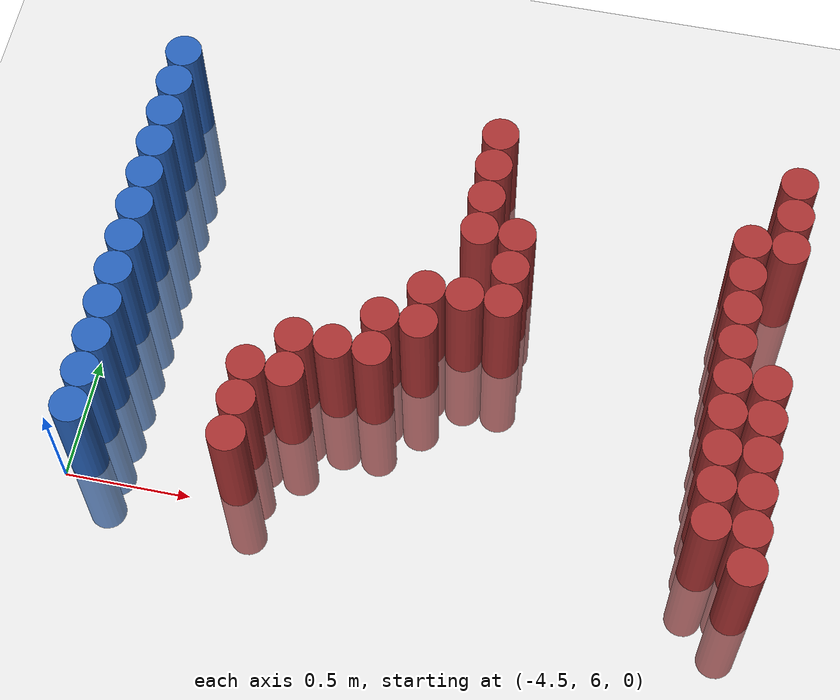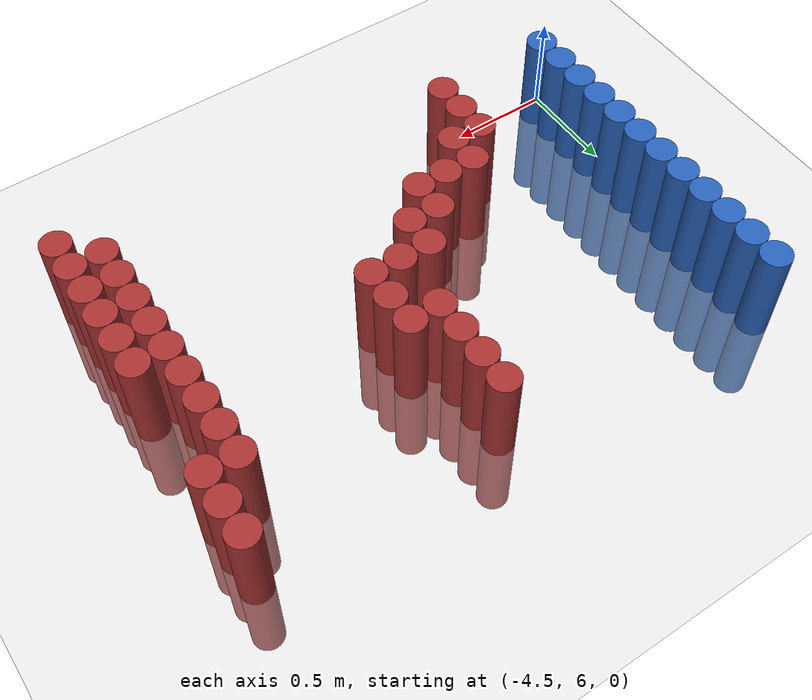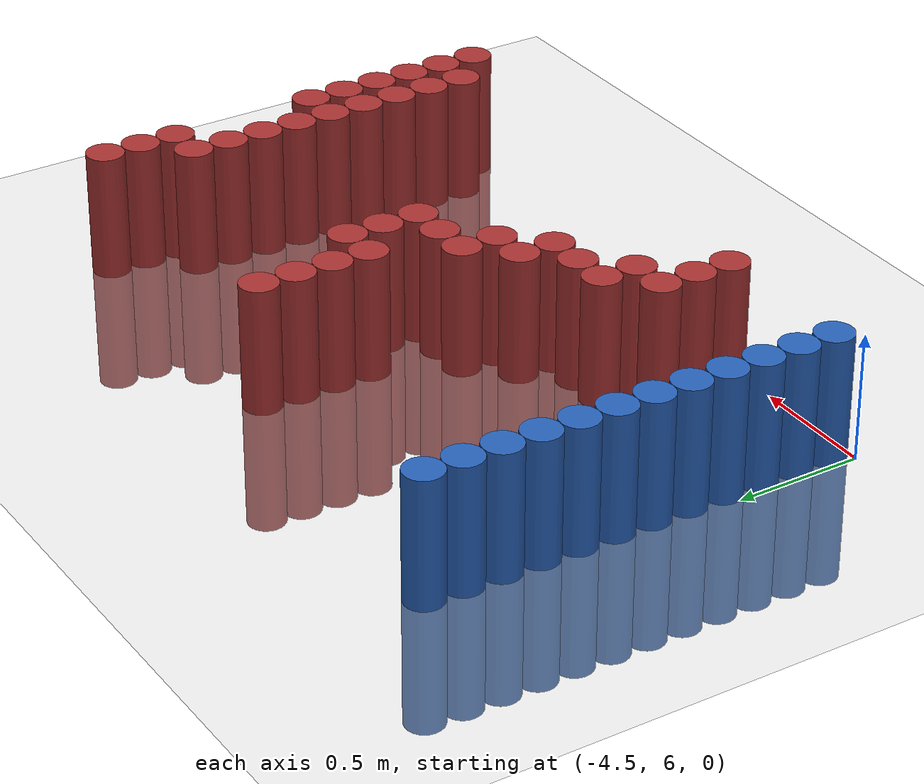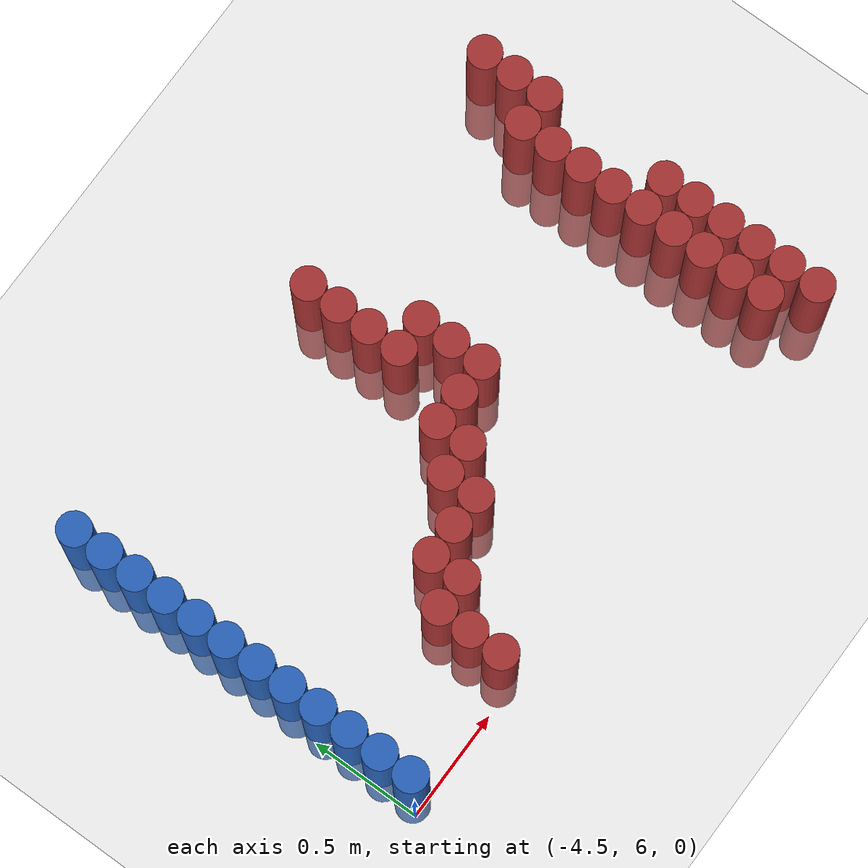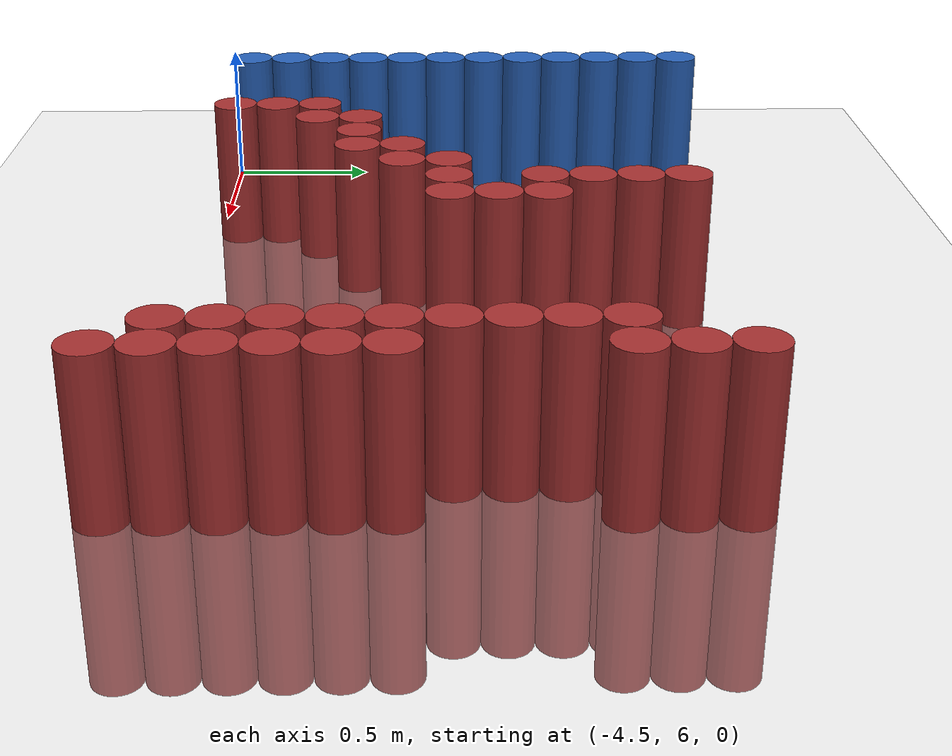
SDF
<sdf version="1.6">
 <world name="default">
  <model name="ground_plane">
   <static>1</static>
   <link name="link">
    <collision name="collision">
     <geometry><plane><normal>0 0 1</normal><size>100 100</size></plane></geometry>
     <surface><friction><ode><mu>100</mu><mu2>50</mu2></ode></friction></surface>
    </collision>
    <visual name="visual">
     <cast_shadows>0</cast_shadows>
     <geometry><plane><normal>0 0 1</normal><size>100 100</size></plane></geometry>
     <material>
      <script><uri>file://media/materials/scripts/gazebo.material</uri><name>Gazebo/Grey</name></script>
     </material>
    </visual>
   </link>
  </model>
  <model name="unit_cylinder_102">
   <static>1</static>
   <pose>-4.425000 6.075000 0.000000 0.000000 0.000000 0.000000</pose>
   <link name="link">
    <inertial>
     <mass>1</mass>
     <inertia><ixx>0.145833</ixx><ixy>0</ixy><ixz>0</ixz><iyy>0.145833</iyy><iyz>0</iyz><izz>0.125</izz></inertia>
    </inertial>
    <collision name="collision">
     <geometry><cylinder><radius>0.075000</radius><length>1</length></cylinder></geometry>
    </collision>
    <visual name="visual">
     <geometry><cylinder><radius>0.075000</radius><length>1</length></cylinder></geometry>
     <material>
      <ambient>0.152000 0.379000 0.720000 1</ambient>
      <diffuse>0.152000 0.379000 0.720000 1</diffuse>
     </material>
     <material>
      <script><name>Gazebo/Grey</name><uri>file://media/materials/scripts/gazebo.material</uri></script>
     </material>
    </visual>
   </link>
  </model>
  <model name="unit_cylinder_103">
   <static>1</static>
   <pose>-4.425000 6.225000 0.000000 0.000000 0.000000 0.000000</pose>
   <link name="link">
    <inertial>
     <mass>1</mass>
     <inertia><ixx>0.145833</ixx><ixy>0</ixy><ixz>0</ixz><iyy>0.145833</iyy><iyz>0</iyz><izz>0.125</izz></inertia>
    </inertial>
    <collision name="collision">
     <geometry><cylinder><radius>0.075000</radius><length>1</length></cylinder></geometry>
    </collision>
    <visual name="visual">
     <geometry><cylinder><radius>0.075000</radius><length>1</length></cylinder></geometry>
     <material>
      <ambient>0.152000 0.379000 0.720000 1</ambient>
      <diffuse>0.152000 0.379000 0.720000 1</diffuse>
     </material>
     <material>
      <script><name>Gazebo/Grey</name><uri>file://media/materials/scripts/gazebo.material</uri></script>
     </material>
    </visual>
   </link>
  </model>
  <model name="unit_cylinder_104">
   <static>1</static>
   <pose>-4.425000 6.375000 0.000000 0.000000 0.000000 0.000000</pose>
   <link name="link">
    <inertial>
     <mass>1</mass>
     <inertia><ixx>0.145833</ixx><ixy>0</ixy><ixz>0</ixz><iyy>0.145833</iyy><iyz>0</iyz><izz>0.125</izz></inertia>
    </inertial>
    <collision name="collision">
     <geometry><cylinder><radius>0.075000</radius><length>1</length></cylinder></geometry>
    </collision>
    <visual name="visual">
     <geometry><cylinder><radius>0.075000</radius><length>1</length></cylinder></geometry>
     <material>
      <ambient>0.152000 0.379000 0.720000 1</ambient>
      <diffuse>0.152000 0.379000 0.720000 1</diffuse>
     </material>
     <material>
      <script><name>Gazebo/Grey</name><uri>file://media/materials/scripts/gazebo.material</uri></script>
     </material>
    </visual>
   </link>
  </model>
  <model name="unit_cylinder_105">
   <static>1</static>
   <pose>-4.425000 6.525000 0.000000 0.000000 0.000000 0.000000</pose>
   <link name="link">
    <inertial>
     <mass>1</mass>
     <inertia><ixx>0.145833</ixx><ixy>0</ixy><ixz>0</ixz><iyy>0.145833</iyy><iyz>0</iyz><izz>0.125</izz></inertia>
    </inertial>
    <collision name="collision">
     <geometry><cylinder><radius>0.075000</radius><length>1</length></cylinder></geometry>
    </collision>
    <visual name="visual">
     <geometry><cylinder><radius>0.075000</radius><length>1</length></cylinder></geometry>
     <material>
      <ambient>0.152000 0.379000 0.720000 1</ambient>
      <diffuse>0.152000 0.379000 0.720000 1</diffuse>
     </material>
     <material>
      <script><name>Gazebo/Grey</name><uri>file://media/materials/scripts/gazebo.material</uri></script>
     </material>
    </visual>
   </link>
  </model>
  <model name="unit_cylinder_106">
   <static>1</static>
   <pose>-4.425000 6.675000 0.000000 0.000000 0.000000 0.000000</pose>
   <link name="link">
    <inertial>
     <mass>1</mass>
     <inertia><ixx>0.145833</ixx><ixy>0</ixy><ixz>0</ixz><iyy>0.145833</iyy><iyz>0</iyz><izz>0.125</izz></inertia>
    </inertial>
    <collision name="collision">
     <geometry><cylinder><radius>0.075000</radius><length>1</length></cylinder></geometry>
    </collision>
    <visual name="visual">
     <geometry><cylinder><radius>0.075000</radius><length>1</length></cylinder></geometry>
     <material>
      <ambient>0.152000 0.379000 0.720000 1</ambient>
      <diffuse>0.152000 0.379000 0.720000 1</diffuse>
     </material>
     <material>
      <script><name>Gazebo/Grey</name><uri>file://media/materials/scripts/gazebo.material</uri></script>
     </material>
    </visual>
   </link>
  </model>
  <model name="unit_cylinder_107">
   <static>1</static>
   <pose>-4.425000 6.825000 0.000000 0.000000 0.000000 0.000000</pose>
   <link name="link">
    <inertial>
     <mass>1</mass>
     <inertia><ixx>0.145833</ixx><ixy>0</ixy><ixz>0</ixz><iyy>0.145833</iyy><iyz>0</iyz><izz>0.125</izz></inertia>
    </inertial>
    <collision name="collision">
     <geometry><cylinder><radius>0.075000</radius><length>1</length></cylinder></geometry>
    </collision>
    <visual name="visual">
     <geometry><cylinder><radius>0.075000</radius><length>1</length></cylinder></geometry>
     <material>
      <ambient>0.152000 0.379000 0.720000 1</ambient>
      <diffuse>0.152000 0.379000 0.720000 1</diffuse>
     </material>
     <material>
      <script><name>Gazebo/Grey</name><uri>file://media/materials/scripts/gazebo.material</uri></script>
     </material>
    </visual>
   </link>
  </model>
  <model name="unit_cylinder_108">
   <static>1</static>
   <pose>-4.425000 6.975000 0.000000 0.000000 0.000000 0.000000</pose>
   <link name="link">
    <inertial>
     <mass>1</mass>
     <inertia><ixx>0.145833</ixx><ixy>0</ixy><ixz>0</ixz><iyy>0.145833</iyy><iyz>0</iyz><izz>0.125</izz></inertia>
    </inertial>
    <collision name="collision">
     <geometry><cylinder><radius>0.075000</radius><length>1</length></cylinder></geometry>
    </collision>
    <visual name="visual">
     <geometry><cylinder><radius>0.075000</radius><length>1</length></cylinder></geometry>
     <material>
      <ambient>0.152000 0.379000 0.720000 1</ambient>
      <diffuse>0.152000 0.379000 0.720000 1</diffuse>
     </material>
     <material>
      <script><name>Gazebo/Grey</name><uri>file://media/materials/scripts/gazebo.material</uri></script>
     </material>
    </visual>
   </link>
  </model>
  <model name="unit_cylinder_109">
   <static>1</static>
   <pose>-4.425000 7.125000 0.000000 0.000000 0.000000 0.000000</pose>
   <link name="link">
    <inertial>
     <mass>1</mass>
     <inertia><ixx>0.145833</ixx><ixy>0</ixy><ixz>0</ixz><iyy>0.145833</iyy><iyz>0</iyz><izz>0.125</izz></inertia>
    </inertial>
    <collision name="collision">
     <geometry><cylinder><radius>0.075000</radius><length>1</length></cylinder></geometry>
    </collision>
    <visual name="visual">
     <geometry><cylinder><radius>0.075000</radius><length>1</length></cylinder></geometry>
     <material>
      <ambient>0.152000 0.379000 0.720000 1</ambient>
      <diffuse>0.152000 0.379000 0.720000 1</diffuse>
     </material>
     <material>
      <script><name>Gazebo/Grey</name><uri>file://media/materials/scripts/gazebo.material</uri></script>
     </material>
    </visual>
   </link>
  </model>
  <model name="unit_cylinder_110">
   <static>1</static>
   <pose>-4.425000 7.275000 0.000000 0.000000 0.000000 0.000000</pose>
   <link name="link">
    <inertial>
     <mass>1</mass>
     <inertia><ixx>0.145833</ixx><ixy>0</ixy><ixz>0</ixz><iyy>0.145833</iyy><iyz>0</iyz><izz>0.125</izz></inertia>
    </inertial>
    <collision name="collision">
     <geometry><cylinder><radius>0.075000</radius><length>1</length></cylinder></geometry>
    </collision>
    <visual name="visual">
     <geometry><cylinder><radius>0.075000</radius><length>1</length></cylinder></geometry>
     <material>
      <ambient>0.152000 0.379000 0.720000 1</ambient>
      <diffuse>0.152000 0.379000 0.720000 1</diffuse>
     </material>
     <material>
      <script><name>Gazebo/Grey</name><uri>file://media/materials/scripts/gazebo.material</uri></script>
     </material>
    </visual>
   </link>
  </model>
  <model name="unit_cylinder_111">
   <static>1</static>
   <pose>-4.425000 7.425000 0.000000 0.000000 0.000000 0.000000</pose>
   <link name="link">
    <inertial>
     <mass>1</mass>
     <inertia><ixx>0.145833</ixx><ixy>0</ixy><ixz>0</ixz><iyy>0.145833</iyy><iyz>0</iyz><izz>0.125</izz></inertia>
    </inertial>
    <collision name="collision">
     <geometry><cylinder><radius>0.075000</radius><length>1</length></cylinder></geometry>
    </collision>
    <visual name="visual">
     <geometry><cylinder><radius>0.075000</radius><length>1</length></cylinder></geometry>
     <material>
      <ambient>0.152000 0.379000 0.720000 1</ambient>
      <diffuse>0.152000 0.379000 0.720000 1</diffuse>
     </material>
     <material>
      <script><name>Gazebo/Grey</name><uri>file://media/materials/scripts/gazebo.material</uri></script>
     </material>
    </visual>
   </link>
  </model>
  <model name="unit_cylinder_112">
   <static>1</static>
   <pose>-4.425000 7.575000 0.000000 0.000000 0.000000 0.000000</pose>
   <link name="link">
    <inertial>
     <mass>1</mass>
     <inertia><ixx>0.145833</ixx><ixy>0</ixy><ixz>0</ixz><iyy>0.145833</iyy><iyz>0</iyz><izz>0.125</izz></inertia>
    </inertial>
    <collision name="collision">
     <geometry><cylinder><radius>0.075000</radius><length>1</length></cylinder></geometry>
    </collision>
    <visual name="visual">
     <geometry><cylinder><radius>0.075000</radius><length>1</length></cylinder></geometry>
     <material>
      <ambient>0.152000 0.379000 0.720000 1</ambient>
      <diffuse>0.152000 0.379000 0.720000 1</diffuse>
     </material>
     <material>
      <script><name>Gazebo/Grey</name><uri>file://media/materials/scripts/gazebo.material</uri></script>
     </material>
    </visual>
   </link>
  </model>
  <model name="unit_cylinder_113">
   <static>1</static>
   <pose>-4.425000 7.725000 0.000000 0.000000 0.000000 0.000000</pose>
   <link name="link">
    <inertial>
     <mass>1</mass>
     <inertia><ixx>0.145833</ixx><ixy>0</ixy><ixz>0</ixz><iyy>0.145833</iyy><iyz>0</iyz><izz>0.125</izz></inertia>
    </inertial>
    <collision name="collision">
     <geometry><cylinder><radius>0.075000</radius><length>1</length></cylinder></geometry>
    </collision>
    <visual name="visual">
     <geometry><cylinder><radius>0.075000</radius><length>1</length></cylinder></geometry>
     <material>
      <ambient>0.152000 0.379000 0.720000 1</ambient>
      <diffuse>0.152000 0.379000 0.720000 1</diffuse>
     </material>
     <material>
      <script><name>Gazebo/Grey</name><uri>file://media/materials/scripts/gazebo.material</uri></script>
     </material>
    </visual>
   </link>
  </model>
  <model name="unit_cylinder_146">
   <static>1</static>
   <pose>-3.825000 6.075000 0.000000 0.000000 0.000000 0.000000</pose>
   <link name="link">
    <inertial>
     <mass>1</mass>
     <inertia><ixx>0.145833</ixx><ixy>0</ixy><ixz>0</ixz><iyy>0.145833</iyy><iyz>0</iyz><izz>0.125</izz></inertia>
    </inertial>
    <collision name="collision">
     <geometry><cylinder><radius>0.075000</radius><length>1</length></cylinder></geometry>
    </collision>
    <visual name="visual">
     <geometry><cylinder><radius>0.075000</radius><length>1</length></cylinder></geometry>
     <material>
      <ambient>0.648000 0.192000 0.192000 1</ambient>
      <diffuse>0.648000 0.192000 0.192000 1</diffuse>
     </material>
     <material>
      <script><name>Gazebo/Grey</name><uri>file://media/materials/scripts/gazebo.material</uri></script>
     </material>
    </visual>
   </link>
  </model>
  <model name="unit_cylinder_147">
   <static>1</static>
   <pose>-3.825000 6.225000 0.000000 0.000000 0.000000 0.000000</pose>
   <link name="link">
    <inertial>
     <mass>1</mass>
     <inertia><ixx>0.145833</ixx><ixy>0</ixy><ixz>0</ixz><iyy>0.145833</iyy><iyz>0</iyz><izz>0.125</izz></inertia>
    </inertial>
    <collision name="collision">
     <geometry><cylinder><radius>0.075000</radius><length>1</length></cylinder></geometry>
    </collision>
    <visual name="visual">
     <geometry><cylinder><radius>0.075000</radius><length>1</length></cylinder></geometry>
     <material>
      <ambient>0.648000 0.192000 0.192000 1</ambient>
      <diffuse>0.648000 0.192000 0.192000 1</diffuse>
     </material>
     <material>
      <script><name>Gazebo/Grey</name><uri>file://media/materials/scripts/gazebo.material</uri></script>
     </material>
    </visual>
   </link>
  </model>
  <model name="unit_cylinder_148">
   <static>1</static>
   <pose>-3.825000 6.375000 0.000000 0.000000 0.000000 0.000000</pose>
   <link name="link">
    <inertial>
     <mass>1</mass>
     <inertia><ixx>0.145833</ixx><ixy>0</ixy><ixz>0</ixz><iyy>0.145833</iyy><iyz>0</iyz><izz>0.125</izz></inertia>
    </inertial>
    <collision name="collision">
     <geometry><cylinder><radius>0.075000</radius><length>1</length></cylinder></geometry>
    </collision>
    <visual name="visual">
     <geometry><cylinder><radius>0.075000</radius><length>1</length></cylinder></geometry>
     <material>
      <ambient>0.648000 0.192000 0.192000 1</ambient>
      <diffuse>0.648000 0.192000 0.192000 1</diffuse>
     </material>
     <material>
      <script><name>Gazebo/Grey</name><uri>file://media/materials/scripts/gazebo.material</uri></script>
     </material>
    </visual>
   </link>
  </model>
  <model name="unit_cylinder_155">
   <static>1</static>
   <pose>-3.675000 6.375000 0.000000 0.000000 0.000000 0.000000</pose>
   <link name="link">
    <inertial>
     <mass>1</mass>
     <inertia><ixx>0.145833</ixx><ixy>0</ixy><ixz>0</ixz><iyy>0.145833</iyy><iyz>0</iyz><izz>0.125</izz></inertia>
    </inertial>
    <collision name="collision">
     <geometry><cylinder><radius>0.075000</radius><length>1</length></cylinder></geometry>
    </collision>
    <visual name="visual">
     <geometry><cylinder><radius>0.075000</radius><length>1</length></cylinder></geometry>
     <material>
      <ambient>0.648000 0.192000 0.192000 1</ambient>
      <diffuse>0.648000 0.192000 0.192000 1</diffuse>
     </material>
     <material>
      <script><name>Gazebo/Grey</name><uri>file://media/materials/scripts/gazebo.material</uri></script>
     </material>
    </visual>
   </link>
  </model>
  <model name="unit_cylinder_156">
   <static>1</static>
   <pose>-3.675000 6.525000 0.000000 0.000000 0.000000 0.000000</pose>
   <link name="link">
    <inertial>
     <mass>1</mass>
     <inertia><ixx>0.145833</ixx><ixy>0</ixy><ixz>0</ixz><iyy>0.145833</iyy><iyz>0</iyz><izz>0.125</izz></inertia>
    </inertial>
    <collision name="collision">
     <geometry><cylinder><radius>0.075000</radius><length>1</length></cylinder></geometry>
    </collision>
    <visual name="visual">
     <geometry><cylinder><radius>0.075000</radius><length>1</length></cylinder></geometry>
     <material>
      <ambient>0.648000 0.192000 0.192000 1</ambient>
      <diffuse>0.648000 0.192000 0.192000 1</diffuse>
     </material>
     <material>
      <script><name>Gazebo/Grey</name><uri>file://media/materials/scripts/gazebo.material</uri></script>
     </material>
    </visual>
   </link>
  </model>
  <model name="unit_cylinder_161">
   <static>1</static>
   <pose>-3.525000 6.525000 0.000000 0.000000 0.000000 0.000000</pose>
   <link name="link">
    <inertial>
     <mass>1</mass>
     <inertia><ixx>0.145833</ixx><ixy>0</ixy><ixz>0</ixz><iyy>0.145833</iyy><iyz>0</iyz><izz>0.125</izz></inertia>
    </inertial>
    <collision name="collision">
     <geometry><cylinder><radius>0.075000</radius><length>1</length></cylinder></geometry>
    </collision>
    <visual name="visual">
     <geometry><cylinder><radius>0.075000</radius><length>1</length></cylinder></geometry>
     <material>
      <ambient>0.648000 0.192000 0.192000 1</ambient>
      <diffuse>0.648000 0.192000 0.192000 1</diffuse>
     </material>
     <material>
      <script><name>Gazebo/Grey</name><uri>file://media/materials/scripts/gazebo.material</uri></script>
     </material>
    </visual>
   </link>
  </model>
  <model name="unit_cylinder_163">
   <static>1</static>
   <pose>-3.375000 6.525000 0.000000 0.000000 0.000000 0.000000</pose>
   <link name="link">
    <inertial>
     <mass>1</mass>
     <inertia><ixx>0.145833</ixx><ixy>0</ixy><ixz>0</ixz><iyy>0.145833</iyy><iyz>0</iyz><izz>0.125</izz></inertia>
    </inertial>
    <collision name="collision">
     <geometry><cylinder><radius>0.075000</radius><length>1</length></cylinder></geometry>
    </collision>
    <visual name="visual">
     <geometry><cylinder><radius>0.075000</radius><length>1</length></cylinder></geometry>
     <material>
      <ambient>0.648000 0.192000 0.192000 1</ambient>
      <diffuse>0.648000 0.192000 0.192000 1</diffuse>
     </material>
     <material>
      <script><name>Gazebo/Grey</name><uri>file://media/materials/scripts/gazebo.material</uri></script>
     </material>
    </visual>
   </link>
  </model>
  <model name="unit_cylinder_164">
   <static>1</static>
   <pose>-3.375000 6.675000 0.000000 0.000000 0.000000 0.000000</pose>
   <link name="link">
    <inertial>
     <mass>1</mass>
     <inertia><ixx>0.145833</ixx><ixy>0</ixy><ixz>0</ixz><iyy>0.145833</iyy><iyz>0</iyz><izz>0.125</izz></inertia>
    </inertial>
    <collision name="collision">
     <geometry><cylinder><radius>0.075000</radius><length>1</length></cylinder></geometry>
    </collision>
    <visual name="visual">
     <geometry><cylinder><radius>0.075000</radius><length>1</length></cylinder></geometry>
     <material>
      <ambient>0.648000 0.192000 0.192000 1</ambient>
      <diffuse>0.648000 0.192000 0.192000 1</diffuse>
     </material>
     <material>
      <script><name>Gazebo/Grey</name><uri>file://media/materials/scripts/gazebo.material</uri></script>
     </material>
    </visual>
   </link>
  </model>
  <model name="unit_cylinder_166">
   <static>1</static>
   <pose>-3.225000 6.675000 0.000000 0.000000 0.000000 0.000000</pose>
   <link name="link">
    <inertial>
     <mass>1</mass>
     <inertia><ixx>0.145833</ixx><ixy>0</ixy><ixz>0</ixz><iyy>0.145833</iyy><iyz>0</iyz><izz>0.125</izz></inertia>
    </inertial>
    <collision name="collision">
     <geometry><cylinder><radius>0.075000</radius><length>1</length></cylinder></geometry>
    </collision>
    <visual name="visual">
     <geometry><cylinder><radius>0.075000</radius><length>1</length></cylinder></geometry>
     <material>
      <ambient>0.648000 0.192000 0.192000 1</ambient>
      <diffuse>0.648000 0.192000 0.192000 1</diffuse>
     </material>
     <material>
      <script><name>Gazebo/Grey</name><uri>file://media/materials/scripts/gazebo.material</uri></script>
     </material>
    </visual>
   </link>
  </model>
  <model name="unit_cylinder_167">
   <static>1</static>
   <pose>-3.225000 6.825000 0.000000 0.000000 0.000000 0.000000</pose>
   <link name="link">
    <inertial>
     <mass>1</mass>
     <inertia><ixx>0.145833</ixx><ixy>0</ixy><ixz>0</ixz><iyy>0.145833</iyy><iyz>0</iyz><izz>0.125</izz></inertia>
    </inertial>
    <collision name="collision">
     <geometry><cylinder><radius>0.075000</radius><length>1</length></cylinder></geometry>
    </collision>
    <visual name="visual">
     <geometry><cylinder><radius>0.075000</radius><length>1</length></cylinder></geometry>
     <material>
      <ambient>0.648000 0.192000 0.192000 1</ambient>
      <diffuse>0.648000 0.192000 0.192000 1</diffuse>
     </material>
     <material>
      <script><name>Gazebo/Grey</name><uri>file://media/materials/scripts/gazebo.material</uri></script>
     </material>
    </visual>
   </link>
  </model>
  <model name="unit_cylinder_169">
   <static>1</static>
   <pose>-3.075000 6.825000 0.000000 0.000000 0.000000 0.000000</pose>
   <link name="link">
    <inertial>
     <mass>1</mass>
     <inertia><ixx>0.145833</ixx><ixy>0</ixy><ixz>0</ixz><iyy>0.145833</iyy><iyz>0</iyz><izz>0.125</izz></inertia>
    </inertial>
    <collision name="collision">
     <geometry><cylinder><radius>0.075000</radius><length>1</length></cylinder></geometry>
    </collision>
    <visual name="visual">
     <geometry><cylinder><radius>0.075000</radius><length>1</length></cylinder></geometry>
     <material>
      <ambient>0.648000 0.192000 0.192000 1</ambient>
      <diffuse>0.648000 0.192000 0.192000 1</diffuse>
     </material>
     <material>
      <script><name>Gazebo/Grey</name><uri>file://media/materials/scripts/gazebo.material</uri></script>
     </material>
    </visual>
   </link>
  </model>
  <model name="unit_cylinder_170">
   <static>1</static>
   <pose>-3.075000 7.125000 0.000000 0.000000 0.000000 0.000000</pose>
   <link name="link">
    <inertial>
     <mass>1</mass>
     <inertia><ixx>0.145833</ixx><ixy>0</ixy><ixz>0</ixz><iyy>0.145833</iyy><iyz>0</iyz><izz>0.125</izz></inertia>
    </inertial>
    <collision name="collision">
     <geometry><cylinder><radius>0.075000</radius><length>1</length></cylinder></geometry>
    </collision>
    <visual name="visual">
     <geometry><cylinder><radius>0.075000</radius><length>1</length></cylinder></geometry>
     <material>
      <ambient>0.648000 0.192000 0.192000 1</ambient>
      <diffuse>0.648000 0.192000 0.192000 1</diffuse>
     </material>
     <material>
      <script><name>Gazebo/Grey</name><uri>file://media/materials/scripts/gazebo.material</uri></script>
     </material>
    </visual>
   </link>
  </model>
  <model name="unit_cylinder_171">
   <static>1</static>
   <pose>-3.075000 7.275000 0.000000 0.000000 0.000000 0.000000</pose>
   <link name="link">
    <inertial>
     <mass>1</mass>
     <inertia><ixx>0.145833</ixx><ixy>0</ixy><ixz>0</ixz><iyy>0.145833</iyy><iyz>0</iyz><izz>0.125</izz></inertia>
    </inertial>
    <collision name="collision">
     <geometry><cylinder><radius>0.075000</radius><length>1</length></cylinder></geometry>
    </collision>
    <visual name="visual">
     <geometry><cylinder><radius>0.075000</radius><length>1</length></cylinder></geometry>
     <material>
      <ambient>0.648000 0.192000 0.192000 1</ambient>
      <diffuse>0.648000 0.192000 0.192000 1</diffuse>
     </material>
     <material>
      <script><name>Gazebo/Grey</name><uri>file://media/materials/scripts/gazebo.material</uri></script>
     </material>
    </visual>
   </link>
  </model>
  <model name="unit_cylinder_172">
   <static>1</static>
   <pose>-3.075000 7.425000 0.000000 0.000000 0.000000 0.000000</pose>
   <link name="link">
    <inertial>
     <mass>1</mass>
     <inertia><ixx>0.145833</ixx><ixy>0</ixy><ixz>0</ixz><iyy>0.145833</iyy><iyz>0</iyz><izz>0.125</izz></inertia>
    </inertial>
    <collision name="collision">
     <geometry><cylinder><radius>0.075000</radius><length>1</length></cylinder></geometry>
    </collision>
    <visual name="visual">
     <geometry><cylinder><radius>0.075000</radius><length>1</length></cylinder></geometry>
     <material>
      <ambient>0.648000 0.192000 0.192000 1</ambient>
      <diffuse>0.648000 0.192000 0.192000 1</diffuse>
     </material>
     <material>
      <script><name>Gazebo/Grey</name><uri>file://media/materials/scripts/gazebo.material</uri></script>
     </material>
    </visual>
   </link>
  </model>
  <model name="unit_cylinder_173">
   <static>1</static>
   <pose>-3.075000 7.575000 0.000000 0.000000 0.000000 0.000000</pose>
   <link name="link">
    <inertial>
     <mass>1</mass>
     <inertia><ixx>0.145833</ixx><ixy>0</ixy><ixz>0</ixz><iyy>0.145833</iyy><iyz>0</iyz><izz>0.125</izz></inertia>
    </inertial>
    <collision name="collision">
     <geometry><cylinder><radius>0.075000</radius><length>1</length></cylinder></geometry>
    </collision>
    <visual name="visual">
     <geometry><cylinder><radius>0.075000</radius><length>1</length></cylinder></geometry>
     <material>
      <ambient>0.648000 0.192000 0.192000 1</ambient>
      <diffuse>0.648000 0.192000 0.192000 1</diffuse>
     </material>
     <material>
      <script><name>Gazebo/Grey</name><uri>file://media/materials/scripts/gazebo.material</uri></script>
     </material>
    </visual>
   </link>
  </model>
  <model name="unit_cylinder_177">
   <static>1</static>
   <pose>-2.925000 6.825000 0.000000 0.000000 0.000000 0.000000</pose>
   <link name="link">
    <inertial>
     <mass>1</mass>
     <inertia><ixx>0.145833</ixx><ixy>0</ixy><ixz>0</ixz><iyy>0.145833</iyy><iyz>0</iyz><izz>0.125</izz></inertia>
    </inertial>
    <collision name="collision">
     <geometry><cylinder><radius>0.075000</radius><length>1</length></cylinder></geometry>
    </collision>
    <visual name="visual">
     <geometry><cylinder><radius>0.075000</radius><length>1</length></cylinder></geometry>
     <material>
      <ambient>0.648000 0.192000 0.192000 1</ambient>
      <diffuse>0.648000 0.192000 0.192000 1</diffuse>
     </material>
     <material>
      <script><name>Gazebo/Grey</name><uri>file://media/materials/scripts/gazebo.material</uri></script>
     </material>
    </visual>
   </link>
  </model>
  <model name="unit_cylinder_178">
   <static>1</static>
   <pose>-2.925000 6.975000 0.000000 0.000000 0.000000 0.000000</pose>
   <link name="link">
    <inertial>
     <mass>1</mass>
     <inertia><ixx>0.145833</ixx><ixy>0</ixy><ixz>0</ixz><iyy>0.145833</iyy><iyz>0</iyz><izz>0.125</izz></inertia>
    </inertial>
    <collision name="collision">
     <geometry><cylinder><radius>0.075000</radius><length>1</length></cylinder></geometry>
    </collision>
    <visual name="visual">
     <geometry><cylinder><radius>0.075000</radius><length>1</length></cylinder></geometry>
     <material>
      <ambient>0.648000 0.192000 0.192000 1</ambient>
      <diffuse>0.648000 0.192000 0.192000 1</diffuse>
     </material>
     <material>
      <script><name>Gazebo/Grey</name><uri>file://media/materials/scripts/gazebo.material</uri></script>
     </material>
    </visual>
   </link>
  </model>
  <model name="unit_cylinder_179">
   <static>1</static>
   <pose>-2.925000 7.125000 0.000000 0.000000 0.000000 0.000000</pose>
   <link name="link">
    <inertial>
     <mass>1</mass>
     <inertia><ixx>0.145833</ixx><ixy>0</ixy><ixz>0</ixz><iyy>0.145833</iyy><iyz>0</iyz><izz>0.125</izz></inertia>
    </inertial>
    <collision name="collision">
     <geometry><cylinder><radius>0.075000</radius><length>1</length></cylinder></geometry>
    </collision>
    <visual name="visual">
     <geometry><cylinder><radius>0.075000</radius><length>1</length></cylinder></geometry>
     <material>
      <ambient>0.648000 0.192000 0.192000 1</ambient>
      <diffuse>0.648000 0.192000 0.192000 1</diffuse>
     </material>
     <material>
      <script><name>Gazebo/Grey</name><uri>file://media/materials/scripts/gazebo.material</uri></script>
     </material>
    </visual>
   </link>
  </model>
  <model name="unit_cylinder_187">
   <static>1</static>
   <pose>-2.025000 6.075000 0.000000 0.000000 0.000000 0.000000</pose>
   <link name="link">
    <inertial>
     <mass>1</mass>
     <inertia><ixx>0.145833</ixx><ixy>0</ixy><ixz>0</ixz><iyy>0.145833</iyy><iyz>0</iyz><izz>0.125</izz></inertia>
    </inertial>
    <collision name="collision">
     <geometry><cylinder><radius>0.075000</radius><length>1</length></cylinder></geometry>
    </collision>
    <visual name="visual">
     <geometry><cylinder><radius>0.075000</radius><length>1</length></cylinder></geometry>
     <material>
      <ambient>0.648000 0.192000 0.192000 1</ambient>
      <diffuse>0.648000 0.192000 0.192000 1</diffuse>
     </material>
     <material>
      <script><name>Gazebo/Grey</name><uri>file://media/materials/scripts/gazebo.material</uri></script>
     </material>
    </visual>
   </link>
  </model>
  <model name="unit_cylinder_188">
   <static>1</static>
   <pose>-2.025000 6.225000 0.000000 0.000000 0.000000 0.000000</pose>
   <link name="link">
    <inertial>
     <mass>1</mass>
     <inertia><ixx>0.145833</ixx><ixy>0</ixy><ixz>0</ixz><iyy>0.145833</iyy><iyz>0</iyz><izz>0.125</izz></inertia>
    </inertial>
    <collision name="collision">
     <geometry><cylinder><radius>0.075000</radius><length>1</length></cylinder></geometry>
    </collision>
    <visual name="visual">
     <geometry><cylinder><radius>0.075000</radius><length>1</length></cylinder></geometry>
     <material>
      <ambient>0.648000 0.192000 0.192000 1</ambient>
      <diffuse>0.648000 0.192000 0.192000 1</diffuse>
     </material>
     <material>
      <script><name>Gazebo/Grey</name><uri>file://media/materials/scripts/gazebo.material</uri></script>
     </material>
    </visual>
   </link>
  </model>
  <model name="unit_cylinder_189">
   <static>1</static>
   <pose>-2.025000 6.375000 0.000000 0.000000 0.000000 0.000000</pose>
   <link name="link">
    <inertial>
     <mass>1</mass>
     <inertia><ixx>0.145833</ixx><ixy>0</ixy><ixz>0</ixz><iyy>0.145833</iyy><iyz>0</iyz><izz>0.125</izz></inertia>
    </inertial>
    <collision name="collision">
     <geometry><cylinder><radius>0.075000</radius><length>1</length></cylinder></geometry>
    </collision>
    <visual name="visual">
     <geometry><cylinder><radius>0.075000</radius><length>1</length></cylinder></geometry>
     <material>
      <ambient>0.648000 0.192000 0.192000 1</ambient>
      <diffuse>0.648000 0.192000 0.192000 1</diffuse>
     </material>
     <material>
      <script><name>Gazebo/Grey</name><uri>file://media/materials/scripts/gazebo.material</uri></script>
     </material>
    </visual>
   </link>
  </model>
  <model name="unit_cylinder_190">
   <static>1</static>
   <pose>-2.025000 6.525000 0.000000 0.000000 0.000000 0.000000</pose>
   <link name="link">
    <inertial>
     <mass>1</mass>
     <inertia><ixx>0.145833</ixx><ixy>0</ixy><ixz>0</ixz><iyy>0.145833</iyy><iyz>0</iyz><izz>0.125</izz></inertia>
    </inertial>
    <collision name="collision">
     <geometry><cylinder><radius>0.075000</radius><length>1</length></cylinder></geometry>
    </collision>
    <visual name="visual">
     <geometry><cylinder><radius>0.075000</radius><length>1</length></cylinder></geometry>
     <material>
      <ambient>0.648000 0.192000 0.192000 1</ambient>
      <diffuse>0.648000 0.192000 0.192000 1</diffuse>
     </material>
     <material>
      <script><name>Gazebo/Grey</name><uri>file://media/materials/scripts/gazebo.material</uri></script>
     </material>
    </visual>
   </link>
  </model>
  <model name="unit_cylinder_191">
   <static>1</static>
   <pose>-2.025000 6.675000 0.000000 0.000000 0.000000 0.000000</pose>
   <link name="link">
    <inertial>
     <mass>1</mass>
     <inertia><ixx>0.145833</ixx><ixy>0</ixy><ixz>0</ixz><iyy>0.145833</iyy><iyz>0</iyz><izz>0.125</izz></inertia>
    </inertial>
    <collision name="collision">
     <geometry><cylinder><radius>0.075000</radius><length>1</length></cylinder></geometry>
    </collision>
    <visual name="visual">
     <geometry><cylinder><radius>0.075000</radius><length>1</length></cylinder></geometry>
     <material>
      <ambient>0.648000 0.192000 0.192000 1</ambient>
      <diffuse>0.648000 0.192000 0.192000 1</diffuse>
     </material>
     <material>
      <script><name>Gazebo/Grey</name><uri>file://media/materials/scripts/gazebo.material</uri></script>
     </material>
    </visual>
   </link>
  </model>
  <model name="unit_cylinder_192">
   <static>1</static>
   <pose>-2.025000 6.825000 0.000000 0.000000 0.000000 0.000000</pose>
   <link name="link">
    <inertial>
     <mass>1</mass>
     <inertia><ixx>0.145833</ixx><ixy>0</ixy><ixz>0</ixz><iyy>0.145833</iyy><iyz>0</iyz><izz>0.125</izz></inertia>
    </inertial>
    <collision name="collision">
     <geometry><cylinder><radius>0.075000</radius><length>1</length></cylinder></geometry>
    </collision>
    <visual name="visual">
     <geometry><cylinder><radius>0.075000</radius><length>1</length></cylinder></geometry>
     <material>
      <ambient>0.648000 0.192000 0.192000 1</ambient>
      <diffuse>0.648000 0.192000 0.192000 1</diffuse>
     </material>
     <material>
      <script><name>Gazebo/Grey</name><uri>file://media/materials/scripts/gazebo.material</uri></script>
     </material>
    </visual>
   </link>
  </model>
  <model name="unit_cylinder_193">
   <static>1</static>
   <pose>-2.025000 6.975000 0.000000 0.000000 0.000000 0.000000</pose>
   <link name="link">
    <inertial>
     <mass>1</mass>
     <inertia><ixx>0.145833</ixx><ixy>0</ixy><ixz>0</ixz><iyy>0.145833</iyy><iyz>0</iyz><izz>0.125</izz></inertia>
    </inertial>
    <collision name="collision">
     <geometry><cylinder><radius>0.075000</radius><length>1</length></cylinder></geometry>
    </collision>
    <visual name="visual">
     <geometry><cylinder><radius>0.075000</radius><length>1</length></cylinder></geometry>
     <material>
      <ambient>0.648000 0.192000 0.192000 1</ambient>
      <diffuse>0.648000 0.192000 0.192000 1</diffuse>
     </material>
     <material>
      <script><name>Gazebo/Grey</name><uri>file://media/materials/scripts/gazebo.material</uri></script>
     </material>
    </visual>
   </link>
  </model>
  <model name="unit_cylinder_194">
   <static>1</static>
   <pose>-2.025000 7.125000 0.000000 0.000000 0.000000 0.000000</pose>
   <link name="link">
    <inertial>
     <mass>1</mass>
     <inertia><ixx>0.145833</ixx><ixy>0</ixy><ixz>0</ixz><iyy>0.145833</iyy><iyz>0</iyz><izz>0.125</izz></inertia>
    </inertial>
    <collision name="collision">
     <geometry><cylinder><radius>0.075000</radius><length>1</length></cylinder></geometry>
    </collision>
    <visual name="visual">
     <geometry><cylinder><radius>0.075000</radius><length>1</length></cylinder></geometry>
     <material>
      <ambient>0.648000 0.192000 0.192000 1</ambient>
      <diffuse>0.648000 0.192000 0.192000 1</diffuse>
     </material>
     <material>
      <script><name>Gazebo/Grey</name><uri>file://media/materials/scripts/gazebo.material</uri></script>
     </material>
    </visual>
   </link>
  </model>
  <model name="unit_cylinder_195">
   <static>1</static>
   <pose>-2.025000 7.275000 0.000000 0.000000 0.000000 0.000000</pose>
   <link name="link">
    <inertial>
     <mass>1</mass>
     <inertia><ixx>0.145833</ixx><ixy>0</ixy><ixz>0</ixz><iyy>0.145833</iyy><iyz>0</iyz><izz>0.125</izz></inertia>
    </inertial>
    <collision name="collision">
     <geometry><cylinder><radius>0.075000</radius><length>1</length></cylinder></geometry>
    </collision>
    <visual name="visual">
     <geometry><cylinder><radius>0.075000</radius><length>1</length></cylinder></geometry>
     <material>
      <ambient>0.648000 0.192000 0.192000 1</ambient>
      <diffuse>0.648000 0.192000 0.192000 1</diffuse>
     </material>
     <material>
      <script><name>Gazebo/Grey</name><uri>file://media/materials/scripts/gazebo.material</uri></script>
     </material>
    </visual>
   </link>
  </model>
  <model name="unit_cylinder_202">
   <static>1</static>
   <pose>-1.875000 5.925000 0.000000 0.000000 0.000000 0.000000</pose>
   <link name="link">
    <inertial>
     <mass>1</mass>
     <inertia><ixx>0.145833</ixx><ixy>0</ixy><ixz>0</ixz><iyy>0.145833</iyy><iyz>0</iyz><izz>0.125</izz></inertia>
    </inertial>
    <collision name="collision">
     <geometry><cylinder><radius>0.075000</radius><length>1</length></cylinder></geometry>
    </collision>
    <visual name="visual">
     <geometry><cylinder><radius>0.075000</radius><length>1</length></cylinder></geometry>
     <material>
      <ambient>0.648000 0.192000 0.192000 1</ambient>
      <diffuse>0.648000 0.192000 0.192000 1</diffuse>
     </material>
     <material>
      <script><name>Gazebo/Grey</name><uri>file://media/materials/scripts/gazebo.material</uri></script>
     </material>
    </visual>
   </link>
  </model>
  <model name="unit_cylinder_203">
   <static>1</static>
   <pose>-1.875000 6.075000 0.000000 0.000000 0.000000 0.000000</pose>
   <link name="link">
    <inertial>
     <mass>1</mass>
     <inertia><ixx>0.145833</ixx><ixy>0</ixy><ixz>0</ixz><iyy>0.145833</iyy><iyz>0</iyz><izz>0.125</izz></inertia>
    </inertial>
    <collision name="collision">
     <geometry><cylinder><radius>0.075000</radius><length>1</length></cylinder></geometry>
    </collision>
    <visual name="visual">
     <geometry><cylinder><radius>0.075000</radius><length>1</length></cylinder></geometry>
     <material>
      <ambient>0.648000 0.192000 0.192000 1</ambient>
      <diffuse>0.648000 0.192000 0.192000 1</diffuse>
     </material>
     <material>
      <script><name>Gazebo/Grey</name><uri>file://media/materials/scripts/gazebo.material</uri></script>
     </material>
    </visual>
   </link>
  </model>
  <model name="unit_cylinder_204">
   <static>1</static>
   <pose>-1.875000 6.225000 0.000000 0.000000 0.000000 0.000000</pose>
   <link name="link">
    <inertial>
     <mass>1</mass>
     <inertia><ixx>0.145833</ixx><ixy>0</ixy><ixz>0</ixz><iyy>0.145833</iyy><iyz>0</iyz><izz>0.125</izz></inertia>
    </inertial>
    <collision name="collision">
     <geometry><cylinder><radius>0.075000</radius><length>1</length></cylinder></geometry>
    </collision>
    <visual name="visual">
     <geometry><cylinder><radius>0.075000</radius><length>1</length></cylinder></geometry>
     <material>
      <ambient>0.648000 0.192000 0.192000 1</ambient>
      <diffuse>0.648000 0.192000 0.192000 1</diffuse>
     </material>
     <material>
      <script><name>Gazebo/Grey</name><uri>file://media/materials/scripts/gazebo.material</uri></script>
     </material>
    </visual>
   </link>
  </model>
  <model name="unit_cylinder_205">
   <static>1</static>
   <pose>-1.875000 6.375000 0.000000 0.000000 0.000000 0.000000</pose>
   <link name="link">
    <inertial>
     <mass>1</mass>
     <inertia><ixx>0.145833</ixx><ixy>0</ixy><ixz>0</ixz><iyy>0.145833</iyy><iyz>0</iyz><izz>0.125</izz></inertia>
    </inertial>
    <collision name="collision">
     <geometry><cylinder><radius>0.075000</radius><length>1</length></cylinder></geometry>
    </collision>
    <visual name="visual">
     <geometry><cylinder><radius>0.075000</radius><length>1</length></cylinder></geometry>
     <material>
      <ambient>0.648000 0.192000 0.192000 1</ambient>
      <diffuse>0.648000 0.192000 0.192000 1</diffuse>
     </material>
     <material>
      <script><name>Gazebo/Grey</name><uri>file://media/materials/scripts/gazebo.material</uri></script>
     </material>
    </visual>
   </link>
  </model>
  <model name="unit_cylinder_206">
   <static>1</static>
   <pose>-1.875000 6.525000 0.000000 0.000000 0.000000 0.000000</pose>
   <link name="link">
    <inertial>
     <mass>1</mass>
     <inertia><ixx>0.145833</ixx><ixy>0</ixy><ixz>0</ixz><iyy>0.145833</iyy><iyz>0</iyz><izz>0.125</izz></inertia>
    </inertial>
    <collision name="collision">
     <geometry><cylinder><radius>0.075000</radius><length>1</length></cylinder></geometry>
    </collision>
    <visual name="visual">
     <geometry><cylinder><radius>0.075000</radius><length>1</length></cylinder></geometry>
     <material>
      <ambient>0.648000 0.192000 0.192000 1</ambient>
      <diffuse>0.648000 0.192000 0.192000 1</diffuse>
     </material>
     <material>
      <script><name>Gazebo/Grey</name><uri>file://media/materials/scripts/gazebo.material</uri></script>
     </material>
    </visual>
   </link>
  </model>
  <model name="unit_cylinder_207">
   <static>1</static>
   <pose>-1.875000 6.675000 0.000000 0.000000 0.000000 0.000000</pose>
   <link name="link">
    <inertial>
     <mass>1</mass>
     <inertia><ixx>0.145833</ixx><ixy>0</ixy><ixz>0</ixz><iyy>0.145833</iyy><iyz>0</iyz><izz>0.125</izz></inertia>
    </inertial>
    <collision name="collision">
     <geometry><cylinder><radius>0.075000</radius><length>1</length></cylinder></geometry>
    </collision>
    <visual name="visual">
     <geometry><cylinder><radius>0.075000</radius><length>1</length></cylinder></geometry>
     <material>
      <ambient>0.648000 0.192000 0.192000 1</ambient>
      <diffuse>0.648000 0.192000 0.192000 1</diffuse>
     </material>
     <material>
      <script><name>Gazebo/Grey</name><uri>file://media/materials/scripts/gazebo.material</uri></script>
     </material>
    </visual>
   </link>
  </model>
  <model name="unit_cylinder_208">
   <static>1</static>
   <pose>-1.875000 7.275000 0.000000 0.000000 0.000000 0.000000</pose>
   <link name="link">
    <inertial>
     <mass>1</mass>
     <inertia><ixx>0.145833</ixx><ixy>0</ixy><ixz>0</ixz><iyy>0.145833</iyy><iyz>0</iyz><izz>0.125</izz></inertia>
    </inertial>
    <collision name="collision">
     <geometry><cylinder><radius>0.075000</radius><length>1</length></cylinder></geometry>
    </collision>
    <visual name="visual">
     <geometry><cylinder><radius>0.075000</radius><length>1</length></cylinder></geometry>
     <material>
      <ambient>0.648000 0.192000 0.192000 1</ambient>
      <diffuse>0.648000 0.192000 0.192000 1</diffuse>
     </material>
     <material>
      <script><name>Gazebo/Grey</name><uri>file://media/materials/scripts/gazebo.material</uri></script>
     </material>
    </visual>
   </link>
  </model>
  <model name="unit_cylinder_209">
   <static>1</static>
   <pose>-1.875000 7.425000 0.000000 0.000000 0.000000 0.000000</pose>
   <link name="link">
    <inertial>
     <mass>1</mass>
     <inertia><ixx>0.145833</ixx><ixy>0</ixy><ixz>0</ixz><iyy>0.145833</iyy><iyz>0</iyz><izz>0.125</izz></inertia>
    </inertial>
    <collision name="collision">
     <geometry><cylinder><radius>0.075000</radius><length>1</length></cylinder></geometry>
    </collision>
    <visual name="visual">
     <geometry><cylinder><radius>0.075000</radius><length>1</length></cylinder></geometry>
     <material>
      <ambient>0.648000 0.192000 0.192000 1</ambient>
      <diffuse>0.648000 0.192000 0.192000 1</diffuse>
     </material>
     <material>
      <script><name>Gazebo/Grey</name><uri>file://media/materials/scripts/gazebo.material</uri></script>
     </material>
    </visual>
   </link>
  </model>
  <model name="unit_cylinder_210">
   <static>1</static>
   <pose>-1.875000 7.575000 0.000000 0.000000 0.000000 0.000000</pose>
   <link name="link">
    <inertial>
     <mass>1</mass>
     <inertia><ixx>0.145833</ixx><ixy>0</ixy><ixz>0</ixz><iyy>0.145833</iyy><iyz>0</iyz><izz>0.125</izz></inertia>
    </inertial>
    <collision name="collision">
     <geometry><cylinder><radius>0.075000</radius><length>1</length></cylinder></geometry>
    </collision>
    <visual name="visual">
     <geometry><cylinder><radius>0.075000</radius><length>1</length></cylinder></geometry>
     <material>
      <ambient>0.648000 0.192000 0.192000 1</ambient>
      <diffuse>0.648000 0.192000 0.192000 1</diffuse>
     </material>
     <material>
      <script><name>Gazebo/Grey</name><uri>file://media/materials/scripts/gazebo.material</uri></script>
     </material>
    </visual>
   </link>
  </model>
 </world>
</sdf>
